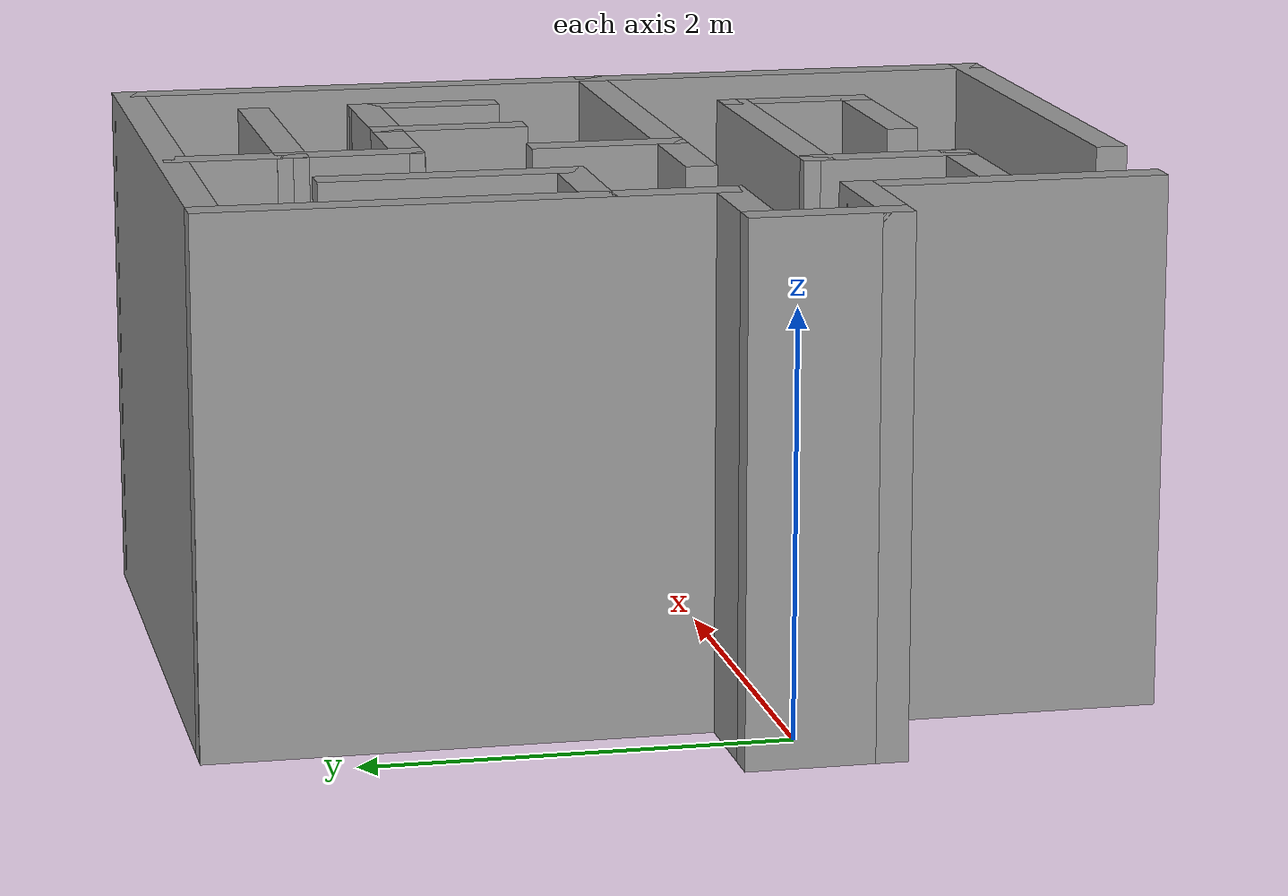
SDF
<?xml version='1.0'?>
<sdf version='1.7'>
  <model name='Lab2'>
    <pose>1.51 0.428717 0 0 -0 0</pose>
    <link name='Wall_11'>
      <collision name='Wall_11_Collision'>
        <geometry>
          <box>
            <size>1.5 0.15 2.5</size>
          </box>
        </geometry>
        <pose>0 0 1.25 0 -0 0</pose>
      </collision>
      <visual name='Wall_11_Visual'>
        <pose>0 0 1.25 0 -0 0</pose>
        <geometry>
          <box>
            <size>1.5 0.15 2.5</size>
          </box>
        </geometry>
        <material>
          <script>
            <uri>file://media/materials/scripts/gazebo.material</uri>
            <name>Gazebo/Grey</name>
          </script>
          <ambient>1 1 1 1</ambient>
        </material>
        <meta>
          <layer>0</layer>
        </meta>
      </visual>
      <pose>-1.25 -1.45 0 0 -0 -1.5708</pose>
    </link>
    <link name='Wall_13'>
      <collision name='Wall_13_Collision'>
        <geometry>
          <box>
            <size>0.830292 0.15 2.5</size>
          </box>
        </geometry>
        <pose>0 0 1.25 0 -0 0</pose>
      </collision>
      <visual name='Wall_13_Visual'>
        <pose>0 0 1.25 0 -0 0</pose>
        <geometry>
          <box>
            <size>0.830292 0.15 2.5</size>
          </box>
        </geometry>
        <material>
          <script>
            <uri>file://media/materials/scripts/gazebo.material</uri>
            <name>Gazebo/Grey</name>
          </script>
          <ambient>1 1 1 1</ambient>
        </material>
        <meta>
          <layer>0</layer>
        </meta>
      </visual>
      <pose>-0.573909 -1.08491 0 0 -0 -1.5708</pose>
    </link>
    <link name='Wall_14'>
      <collision name='Wall_14_Collision'>
        <geometry>
          <box>
            <size>0.75 0.15 2.5</size>
          </box>
        </geometry>
        <pose>0 0 1.25 0 -0 0</pose>
      </collision>
      <visual name='Wall_14_Visual'>
        <pose>0 0 1.25 0 -0 0</pose>
        <geometry>
          <box>
            <size>0.75 0.15 2.5</size>
          </box>
        </geometry>
        <material>
          <script>
            <uri>file://media/materials/scripts/gazebo.material</uri>
            <name>Gazebo/Grey</name>
          </script>
          <ambient>1 1 1 1</ambient>
        </material>
        <meta>
          <layer>0</layer>
        </meta>
      </visual>
      <pose>-0.879566 -1.42506 0 0 -0 3.14159</pose>
    </link>
    <link name='Wall_16'>
      <collision name='Wall_16_Collision'>
        <geometry>
          <box>
            <size>1.73307 0.15 2.5</size>
          </box>
        </geometry>
        <pose>0 0 1.25 0 -0 0</pose>
      </collision>
      <visual name='Wall_16_Visual'>
        <pose>0 0 1.25 0 -0 0</pose>
        <geometry>
          <box>
            <size>1.73307 0.15 2.5</size>
          </box>
        </geometry>
        <material>
          <script>
            <uri>file://media/materials/scripts/gazebo.material</uri>
            <name>Gazebo/Grey</name>
          </script>
          <ambient>1 1 1 1</ambient>
        </material>
        <meta>
          <layer>0</layer>
        </meta>
      </visual>
      <pose>0.217606 -0.741935 0 0 -0 0.003573</pose>
    </link>
    <link name='Wall_18'>
      <collision name='Wall_18_Collision'>
        <geometry>
          <box>
            <size>0.75 0.15 2.5</size>
          </box>
        </geometry>
        <pose>0 0 1.25 0 -0 0</pose>
      </collision>
      <visual name='Wall_18_Visual'>
        <pose>0 0 1.25 0 -0 0</pose>
        <geometry>
          <box>
            <size>0.75 0.15 2.5</size>
          </box>
        </geometry>
        <material>
          <script>
            <uri>file://media/materials/scripts/gazebo.material</uri>
            <name>Gazebo/Grey</name>
          </script>
          <ambient>1 1 1 1</ambient>
        </material>
        <meta>
          <layer>0</layer>
        </meta>
      </visual>
      <pose>1.00912 -1.04476 0 0 -0 1.5708</pose>
    </link>
    <link name='Wall_2'>
      <collision name='Wall_2_Collision'>
        <geometry>
          <box>
            <size>0.75 0.15 2.5</size>
          </box>
        </geometry>
        <pose>0 0 1.25 0 -0 0</pose>
      </collision>
      <visual name='Wall_2_Visual'>
        <pose>0 0 1.25 0 -0 0</pose>
        <geometry>
          <box>
            <size>0.75 0.15 2.5</size>
          </box>
        </geometry>
        <material>
          <script>
            <uri>file://media/materials/scripts/gazebo.material</uri>
            <name>Gazebo/Grey</name>
          </script>
          <ambient>1 1 1 1</ambient>
        </material>
        <meta>
          <layer>0</layer>
        </meta>
      </visual>
      <pose>-1.55 -0.775 0 0 -0 0</pose>
    </link>
    <link name='Wall_22'>
      <collision name='Wall_22_Collision'>
        <geometry>
          <box>
            <size>0.989873 0.15 2.5</size>
          </box>
        </geometry>
        <pose>0 0 1.25 0 -0 0</pose>
      </collision>
      <visual name='Wall_22_Visual'>
        <pose>0 0 1.25 0 -0 0</pose>
        <geometry>
          <box>
            <size>0.989873 0.15 2.5</size>
          </box>
        </geometry>
        <material>
          <script>
            <uri>file://media/materials/scripts/gazebo.material</uri>
            <name>Gazebo/Grey</name>
          </script>
          <ambient>1 1 1 1</ambient>
        </material>
        <meta>
          <layer>0</layer>
        </meta>
      </visual>
      <pose>0.58919 -1.34534 0 0 -0 -3.14023</pose>
    </link>
    <link name='Wall_24'>
      <collision name='Wall_24_Collision'>
        <geometry>
          <box>
            <size>0.75 0.15 2.5</size>
          </box>
        </geometry>
        <pose>0 0 1.25 0 -0 0</pose>
      </collision>
      <visual name='Wall_24_Visual'>
        <pose>0 0 1.25 0 -0 0</pose>
        <geometry>
          <box>
            <size>0.75 0.15 2.5</size>
          </box>
        </geometry>
        <material>
          <script>
            <uri>file://media/materials/scripts/gazebo.material</uri>
            <name>Gazebo/Grey</name>
          </script>
          <ambient>1 1 1 1</ambient>
        </material>
        <meta>
          <layer>0</layer>
        </meta>
      </visual>
      <pose>-0.301184 -0.181806 0 0 -0 0</pose>
    </link>
    <link name='Wall_25'>
      <collision name='Wall_25_Collision'>
        <geometry>
          <box>
            <size>0.75 0.15 2.5</size>
          </box>
        </geometry>
        <pose>0 0 1.25 0 -0 0</pose>
      </collision>
      <visual name='Wall_25_Visual'>
        <pose>0 0 1.25 0 -0 0</pose>
        <geometry>
          <box>
            <size>0.75 0.15 2.5</size>
          </box>
        </geometry>
        <material>
          <script>
            <uri>file://media/materials/scripts/gazebo.material</uri>
            <name>Gazebo/Grey</name>
          </script>
          <ambient>1 1 1 1</ambient>
        </material>
        <meta>
          <layer>0</layer>
        </meta>
      </visual>
      <pose>-0.001184 0.118194 0 0 -0 1.5708</pose>
    </link>
    <link name='Wall_28'>
      <collision name='Wall_28_Collision'>
        <geometry>
          <box>
            <size>0.75 0.15 2.5</size>
          </box>
        </geometry>
        <pose>0 0 1.25 0 -0 0</pose>
      </collision>
      <visual name='Wall_28_Visual'>
        <pose>0 0 1.25 0 -0 0</pose>
        <geometry>
          <box>
            <size>0.75 0.15 2.5</size>
          </box>
        </geometry>
        <material>
          <script>
            <uri>file://media/materials/scripts/gazebo.material</uri>
            <name>Gazebo/Grey</name>
          </script>
          <ambient>1 1 1 1</ambient>
        </material>
        <meta>
          <layer>0</layer>
        </meta>
      </visual>
      <pose>-0.940418 0.423487 0 0 -0 0</pose>
    </link>
    <link name='Wall_30'>
      <collision name='Wall_30_Collision'>
        <geometry>
          <box>
            <size>1.25 0.15 2.5</size>
          </box>
        </geometry>
        <pose>0 0 1.25 0 -0 0</pose>
      </collision>
      <visual name='Wall_30_Visual'>
        <pose>0 0 1.25 0 -0 0</pose>
        <geometry>
          <box>
            <size>1.25 0.15 2.5</size>
          </box>
        </geometry>
        <material>
          <script>
            <uri>file://media/materials/scripts/gazebo.material</uri>
            <name>Gazebo/Grey</name>
          </script>
          <ambient>1 1 1 1</ambient>
        </material>
        <meta>
          <layer>0</layer>
        </meta>
      </visual>
      <pose>-0.640418 0.973487 0 0 -0 1.5708</pose>
    </link>
    <link name='Wall_33'>
      <collision name='Wall_33_Collision'>
        <geometry>
          <box>
            <size>0.692423 0.15 2.5</size>
          </box>
        </geometry>
        <pose>0 0 1.25 0 -0 0</pose>
      </collision>
      <visual name='Wall_33_Visual'>
        <pose>0 0 1.25 0 -0 0</pose>
        <geometry>
          <box>
            <size>0.692423 0.15 2.5</size>
          </box>
        </geometry>
        <material>
          <script>
            <uri>file://media/materials/scripts/gazebo.material</uri>
            <name>Gazebo/Grey</name>
          </script>
          <ambient>1 1 1 1</ambient>
        </material>
        <meta>
          <layer>0</layer>
        </meta>
      </visual>
      <pose>-0.009075 1.34525 0 0 -0 1.57769</pose>
    </link>
    <link name='Wall_35'>
      <collision name='Wall_35_Collision'>
        <geometry>
          <box>
            <size>0.75 0.15 2.5</size>
          </box>
        </geometry>
        <pose>0 0 1.25 0 -0 0</pose>
      </collision>
      <visual name='Wall_35_Visual'>
        <pose>0 0 1.25 0 -0 0</pose>
        <geometry>
          <box>
            <size>0.75 0.15 2.5</size>
          </box>
        </geometry>
        <material>
          <script>
            <uri>file://media/materials/scripts/gazebo.material</uri>
            <name>Gazebo/Grey</name>
          </script>
          <ambient>1 1 1 1</ambient>
        </material>
        <meta>
          <layer>0</layer>
        </meta>
      </visual>
      <pose>0.292795 1.07404 0 0 -0 0</pose>
    </link>
    <link name='Wall_37'>
      <collision name='Wall_37_Collision'>
        <geometry>
          <box>
            <size>0.75 0.15 2.5</size>
          </box>
        </geometry>
        <pose>0 0 1.25 0 -0 0</pose>
      </collision>
      <visual name='Wall_37_Visual'>
        <pose>0 0 1.25 0 -0 0</pose>
        <geometry>
          <box>
            <size>0.75 0.15 2.5</size>
          </box>
        </geometry>
        <material>
          <script>
            <uri>file://media/materials/scripts/gazebo.material</uri>
            <name>Gazebo/Grey</name>
          </script>
          <ambient>1 1 1 1</ambient>
        </material>
        <meta>
          <layer>0</layer>
        </meta>
      </visual>
      <pose>0.592795 0.774035 0 0 -0 -1.5708</pose>
    </link>
    <link name='Wall_39'>
      <collision name='Wall_39_Collision'>
        <geometry>
          <box>
            <size>2 0.15 2.5</size>
          </box>
        </geometry>
        <pose>0 0 1.25 0 -0 0</pose>
      </collision>
      <visual name='Wall_39_Visual'>
        <pose>0 0 1.25 0 -0 0</pose>
        <geometry>
          <box>
            <size>2 0.15 2.5</size>
          </box>
        </geometry>
        <material>
          <script>
            <uri>file://media/materials/scripts/gazebo.material</uri>
            <name>Gazebo/Grey</name>
          </script>
          <ambient>1 1 1 1</ambient>
        </material>
        <meta>
          <layer>0</layer>
        </meta>
      </visual>
      <pose>0.923816 -0.181806 0 0 -0 0</pose>
    </link>
    <link name='Wall_4'>
      <collision name='Wall_4_Collision'>
        <geometry>
          <box>
            <size>0.75 0.15 2.5</size>
          </box>
        </geometry>
        <pose>0 0 1.25 0 -0 0</pose>
      </collision>
      <visual name='Wall_4_Visual'>
        <pose>0 0 1.25 0 -0 0</pose>
        <geometry>
          <box>
            <size>0.75 0.15 2.5</size>
          </box>
        </geometry>
        <material>
          <script>
            <uri>file://media/materials/scripts/gazebo.material</uri>
            <name>Gazebo/Grey</name>
          </script>
          <ambient>1 1 1 1</ambient>
        </material>
        <meta>
          <layer>0</layer>
        </meta>
      </visual>
      <pose>-1.85 -0.475 0 0 -0 1.5708</pose>
    </link>
    <link name='Wall_41'>
      <collision name='Wall_41_Collision'>
        <geometry>
          <box>
            <size>0.811806 0.15 2.5</size>
          </box>
        </geometry>
        <pose>0 0 1.25 0 -0 0</pose>
      </collision>
      <visual name='Wall_41_Visual'>
        <pose>0 0 1.25 0 -0 0</pose>
        <geometry>
          <box>
            <size>0.811806 0.15 2.5</size>
          </box>
        </geometry>
        <material>
          <script>
            <uri>file://media/materials/scripts/gazebo.material</uri>
            <name>Gazebo/Grey</name>
          </script>
          <ambient>1 1 1 1</ambient>
        </material>
        <meta>
          <layer>0</layer>
        </meta>
      </visual>
      <pose>0.923695 1.07541 0 0 -0 0.004157</pose>
    </link>
    <link name='Wall_42'>
      <collision name='Wall_42_Collision'>
        <geometry>
          <box>
            <size>0.735054 0.15 2.5</size>
          </box>
        </geometry>
        <pose>0 0 1.25 0 -0 0</pose>
      </collision>
      <visual name='Wall_42_Visual'>
        <pose>0 0 1.25 0 -0 0</pose>
        <geometry>
          <box>
            <size>0.735054 0.15 2.5</size>
          </box>
        </geometry>
        <material>
          <script>
            <uri>file://media/materials/scripts/gazebo.material</uri>
            <name>Gazebo/Grey</name>
          </script>
          <ambient>1 1 1 1</ambient>
        </material>
        <meta>
          <layer>0</layer>
        </meta>
      </visual>
      <pose>1.25244 0.784267 0 0 -0 -1.57815</pose>
    </link>
    <link name='Wall_44'>
      <collision name='Wall_44_Collision'>
        <geometry>
          <box>
            <size>1.39776 0.15 2.5</size>
          </box>
        </geometry>
        <pose>0 0 1.25 0 -0 0</pose>
      </collision>
      <visual name='Wall_44_Visual'>
        <pose>0 0 1.25 0 -0 0</pose>
        <geometry>
          <box>
            <size>1.39776 0.15 2.5</size>
          </box>
        </geometry>
        <material>
          <script>
            <uri>file://media/materials/scripts/gazebo.material</uri>
            <name>Gazebo/Grey</name>
          </script>
          <ambient>1 1 1 1</ambient>
        </material>
        <meta>
          <layer>0</layer>
        </meta>
      </visual>
      <pose>0.616673 1.61742 0 0 -0 0.001543</pose>
    </link>
    <link name='Wall_46'>
      <collision name='Wall_46_Collision'>
        <geometry>
          <box>
            <size>0.671446 0.15 2.5</size>
          </box>
        </geometry>
        <pose>0 0 1.25 0 -0 0</pose>
      </collision>
      <visual name='Wall_46_Visual'>
        <pose>0 0 1.25 0 -0 0</pose>
        <geometry>
          <box>
            <size>0.671446 0.15 2.5</size>
          </box>
        </geometry>
        <material>
          <script>
            <uri>file://media/materials/scripts/gazebo.material</uri>
            <name>Gazebo/Grey</name>
          </script>
          <ambient>1 1 1 1</ambient>
        </material>
        <meta>
          <layer>0</layer>
        </meta>
      </visual>
      <pose>-0.009075 1.87718 0 0 -0 1.56362</pose>
    </link>
    <link name='Wall_5'>
      <collision name='Wall_5_Collision'>
        <geometry>
          <box>
            <size>0.75 0.15 2.5</size>
          </box>
        </geometry>
        <pose>0 0 1.25 0 -0 0</pose>
      </collision>
      <visual name='Wall_5_Visual'>
        <pose>0 0 1.25 0 -0 0</pose>
        <geometry>
          <box>
            <size>0.75 0.15 2.5</size>
          </box>
        </geometry>
        <material>
          <script>
            <uri>file://media/materials/scripts/gazebo.material</uri>
            <name>Gazebo/Grey</name>
          </script>
          <ambient>1 1 1 1</ambient>
        </material>
        <meta>
          <layer>0</layer>
        </meta>
      </visual>
      <pose>-1.55 -0.175 0 0 -0 0</pose>
    </link>
    <link name='Wall_6'>
      <collision name='Wall_6_Collision'>
        <geometry>
          <box>
            <size>2.5 0.15 2.5</size>
          </box>
        </geometry>
        <pose>0 0 1.25 0 -0 0</pose>
      </collision>
      <visual name='Wall_6_Visual'>
        <pose>0 0 1.25 0 -0 0</pose>
        <geometry>
          <box>
            <size>2.5 0.15 2.5</size>
          </box>
        </geometry>
        <material>
          <script>
            <uri>file://media/materials/scripts/gazebo.material</uri>
            <name>Gazebo/Grey</name>
          </script>
          <ambient>1 1 1 1</ambient>
        </material>
        <meta>
          <layer>0</layer>
        </meta>
      </visual>
      <pose>-1.25 1 0 0 -0 1.5708</pose>
    </link>
    <link name='Wall_7'>
      <collision name='Wall_7_Collision'>
        <geometry>
          <box>
            <size>3.25 0.15 2.5</size>
          </box>
        </geometry>
        <pose>0 0 1.25 0 -0 0</pose>
      </collision>
      <visual name='Wall_7_Visual'>
        <pose>0 0 1.25 0 -0 0</pose>
        <geometry>
          <box>
            <size>3.25 0.15 2.5</size>
          </box>
        </geometry>
        <material>
          <script>
            <uri>file://media/materials/scripts/gazebo.material</uri>
            <name>Gazebo/Grey</name>
          </script>
          <ambient>1 1 1 1</ambient>
        </material>
        <meta>
          <layer>0</layer>
        </meta>
      </visual>
      <pose>0.3 2.175 0 0 -0 0</pose>
    </link>
    <link name='Wall_8'>
      <collision name='Wall_8_Collision'>
        <geometry>
          <box>
            <size>4.5 0.15 2.5</size>
          </box>
        </geometry>
        <pose>0 0 1.25 0 -0 0</pose>
      </collision>
      <visual name='Wall_8_Visual'>
        <pose>0 0 1.25 0 -0 0</pose>
        <geometry>
          <box>
            <size>4.5 0.15 2.5</size>
          </box>
        </geometry>
        <material>
          <script>
            <uri>file://media/materials/scripts/gazebo.material</uri>
            <name>Gazebo/Grey</name>
          </script>
          <ambient>1 1 1 1</ambient>
        </material>
        <meta>
          <layer>0</layer>
        </meta>
      </visual>
      <pose>1.85 -0 0 0 -0 -1.5708</pose>
    </link>
    <link name='Wall_9'>
      <collision name='Wall_9_Collision'>
        <geometry>
          <box>
            <size>2.5 0.15 2.5</size>
          </box>
        </geometry>
        <pose>0 0 1.25 0 -0 0</pose>
      </collision>
      <visual name='Wall_9_Visual'>
        <pose>0 0 1.25 0 -0 0</pose>
        <geometry>
          <box>
            <size>2.5 0.15 2.5</size>
          </box>
        </geometry>
        <material>
          <script>
            <uri>file://media/materials/scripts/gazebo.material</uri>
            <name>Gazebo/Grey</name>
          </script>
          <ambient>1 1 1 1</ambient>
        </material>
        <meta>
          <layer>0</layer>
        </meta>
      </visual>
      <pose>0.675 -2.175 0 0 -0 3.14159</pose>
    </link>
    <static>1</static>
  </model>
</sdf>
